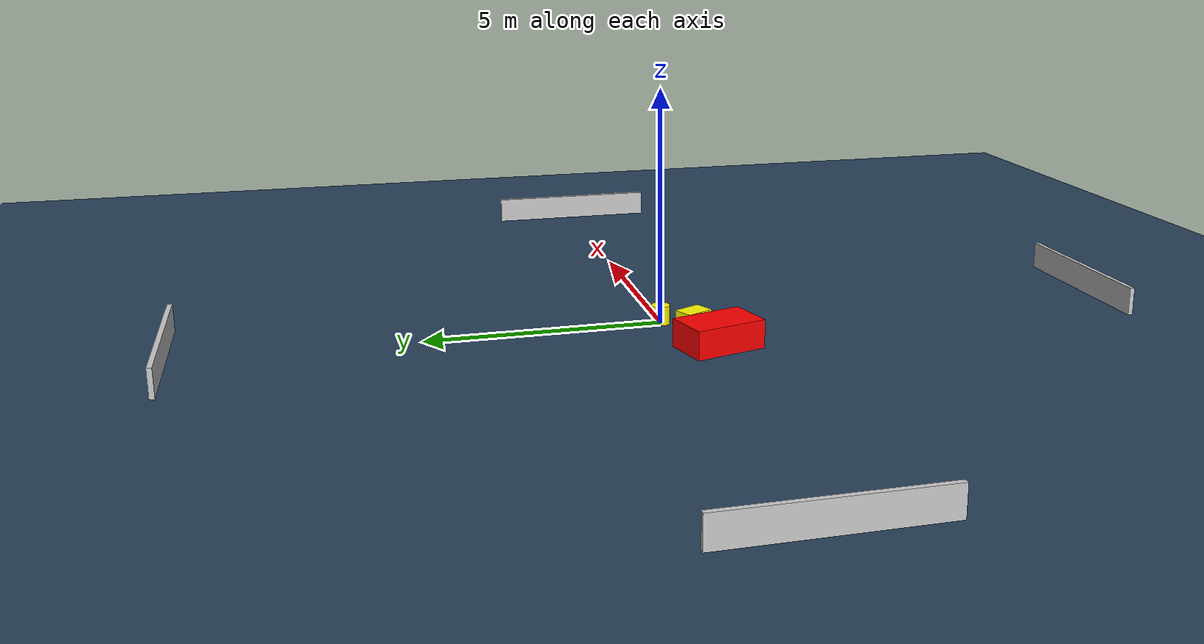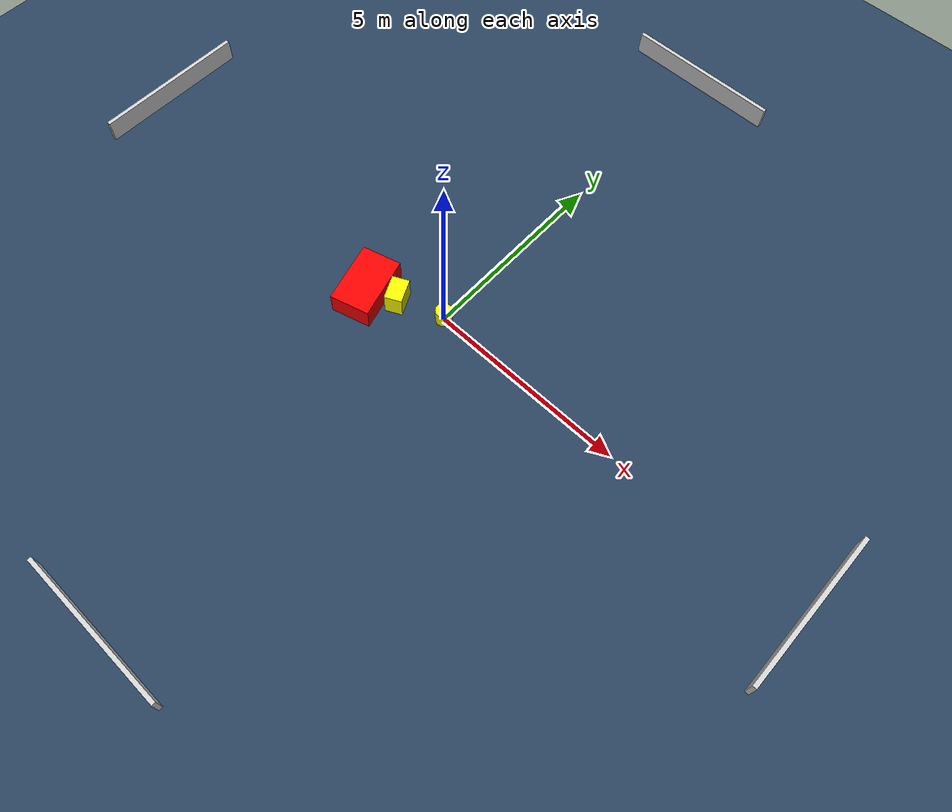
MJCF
<?xml version="1.0" ?>
<mujoco model="generated_environment">
  <option timestep="0.01" integrator="RK4" cone="elliptic"/>
  <default>
    <geom density="1"/>
  </default>
  <asset>
    <texture builtin="gradient" height="3072" name="skybox" rgb1="0.3 0.5 0.7" rgb2="0 0 0" type="skybox" width="512"/>
    <texture builtin="checker" height="300" name="groundplane" rgb1="0.2 0.3 0.4" rgb2="0.1 0.2 0.3" type="2d" width="300"/>
    <material name="groundplane" reflectance="0.2" texrepeat="5 5" texture="groundplane"/>
  </asset>
  <worldbody>
    <light dir="0 0 -1" directional="true" pos="0 0 1.5"/>
    <geom condim="3" friction="0.5 0.005 0.001" material="groundplane" name="floor" pos="0 0 0" size="0 0 0.05" type="plane"/>
    <body name="walls">
      <geom name="wall_1" condim="4" pos="-10.0 0.0 0.3" rgba="0.800000011920929 0.800000011920929 0.800000011920929 1.0" size="0.05 2.0 0.3" type="box"/>
      <geom name="wall_2" condim="4" pos="10.0 0.0 0.3" rgba="0.800000011920929 0.800000011920929 0.800000011920929 1.0" size="0.05 2.0 0.3" type="box"/>
      <geom name="wall_3" condim="4" pos="0.0 -10.0 0.3" rgba="0.800000011920929 0.800000011920929 0.800000011920929 1.0" size="2.0 0.05 0.3" type="box"/>
      <geom name="wall_4" condim="4" pos="0.0 10.0 0.3" rgba="0.800000011920929 0.800000011920929 0.800000011920929 1.0" size="2.0 0.05 0.3" type="box"/>
    </body>
    <body name="robot">
      <joint name="joint_x" type="slide" pos="0 0 0" axis="1 0 0"/>
      <joint name="joint_y" type="slide" pos="0 0 0" axis="0 1 0"/>
      <geom name="robot" type="cylinder" pos="0.0 0.0 0.2" size="0.2 0.2 0.0" mass="5.0" friction="1.0 0.005 0.0001" condim="4" rgba="1.0 1.0 0.0 1.0"/>
    </body>
    <body name="obstacle_1_movable">
      <geom name="obstacle_1_movable" condim="4" pos="-1.111194360745617 -0.41250533897443853 0.3" euler="0 0 206.15548793841432" friction="0.0 0.005 0.001" rgba="1.0 1.0 0.0 1.0" size="0.21573801871507095 0.3046067660207932 0.3" type="box" mass="0.1"/>
      <joint type="free"/>
    </body>
    <body name="obstacle_2_static">
      <geom name="obstacle_2_static" condim="4" pos="-1.8170763645561225 -0.7367512211610251 0.3" euler="0 0 15.781171802349014" friction="0.0 0.005 0.001" rgba="1.0 0.0 0.0 1.0" size="0.4975053418900176 0.7761951818278472 0.3" type="box"/>
    </body>
  </worldbody>
  <actuator>
    <motor name="actuator_x" joint="joint_x" gear="1" ctrlrange="-1 1"/>
    <motor name="actuator_y" joint="joint_y" gear="1" ctrlrange="-1 1"/>
  </actuator>
</mujoco>
